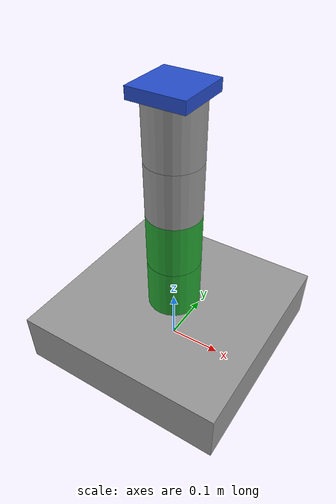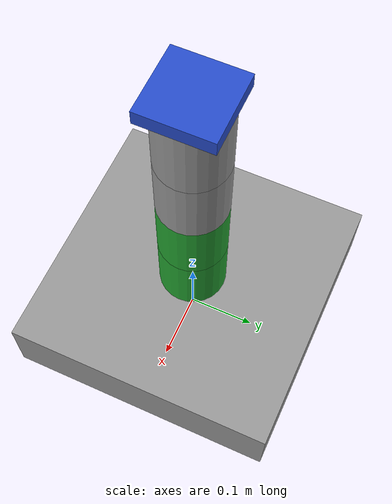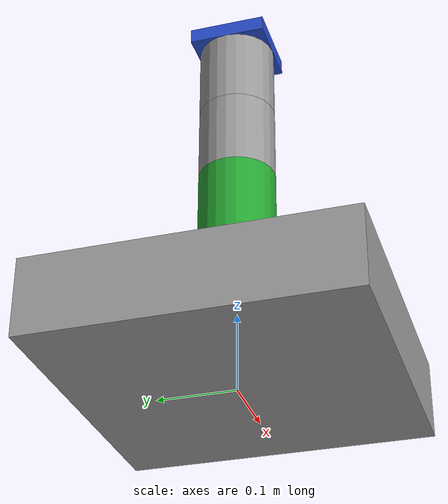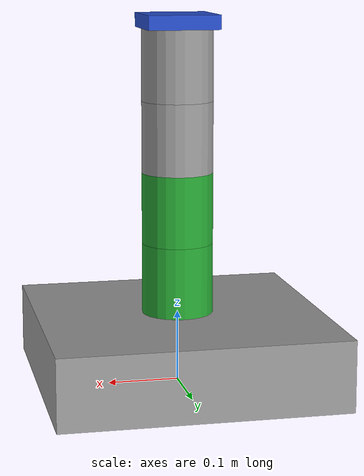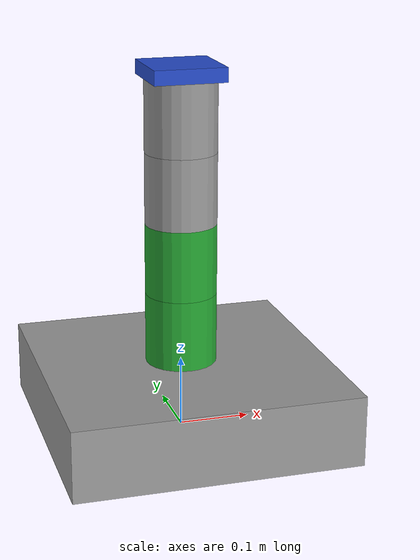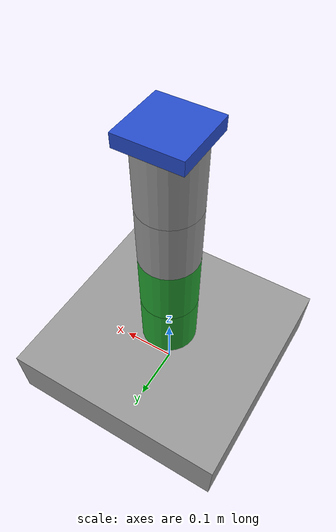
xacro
<?xml version="1.0"?>
<robot xmlns:xacro="http://www.ros.org/wiki/xacro">
    <link name="base_arm_link">
        <visual>
            <geometry>
                <box size="0.4 0.4 0.1"/>
            </geometry>
            <origin xyz="0.0 0.0 0.05" rpy="0.0 0.0 0.0"/>
            <material name="grey"/>
        </visual>
        <collision>
            <geometry>
                <box size="0.4 0.4 0.1"/>
            </geometry>
            <origin xyz="0.0 0.0 0.05" rpy="0.0 0.0 0.0"/>
        </collision>
    </link>
    <link name="amr_link">
        <visual>
            <geometry>
                <cylinder radius="0.05" length="0.1"/>
            </geometry>
            <origin xyz="0.0 0.0 0.05" rpy="0.0 0.0 0.0"/>
            <material name="dark_green"/>
        </visual>
        <collision>
            <geometry>
                <box size="0.1 0.1 0.1"/>
            </geometry>
            <origin xyz="0.0 0.0 0.05" rpy="0.0 0.0 0.0"/>
        </collision>
    </link>
    <link name="forearm_link">
        <visual>
            <geometry>
                <cylinder radius="0.05" length="0.1"/>
            </geometry>
            <origin xyz="0.0 0.0 0.05" rpy="0.0 0.0 0.0"/>
            <material name="light_green"/>
        </visual>
        <collision>
            <geometry>
                <box size="0.1 0.1 0.1"/>
            </geometry>
            <origin xyz="0.0 0.0 0.05" rpy="0.0 0.0 0.0"/>
        </collision>
    </link>
    <link name="forearm_link2">
        <visual>
            <geometry>
                <cylinder radius="0.05" length="0.1"/>
            </geometry>
            <origin xyz="0.0 0.0 0.05" rpy="0.0 0.0 0.0"/>
            <material name="grey"/>
        </visual>
        <collision>
            <geometry>
                <box size="0.1 0.1 0.1"/>
            </geometry>
            <origin xyz="0.0 0.0 0.05" rpy="0.0 0.0 0.0"/>
        </collision>
    </link>
     <link name="forearm_link3">
        <visual>
            <geometry>
                <cylinder radius="0.05" length="0.1"/>
            </geometry>
            <origin xyz="0.0 0.0 0.05" rpy="0.0 0.0 0.0"/>
            <material name="grey"/>
        </visual>
        <collision>
            <geometry>
                <box size="0.1 0.1 0.1"/>
            </geometry>
            <origin xyz="0.0 0.0 0.05" rpy="0.0 0.0 0.0"/>
        </collision>
    </link>
    <link name="hand_link">
        <visual>
            <geometry>
                <box size="0.1 0.1 0.02"/>
            </geometry>
            <origin xyz="0.0 0.0 0.01" rpy="0.0 0.0 0.0"/>
            <material name="blue"/>
        </visual>
        <collision>
            <geometry>
                <box size="0.1 0.1 0.02"/>
            </geometry>
            <origin xyz="0.0 0.0 0.01" rpy="0.0 0.0 0.0"/>
        </collision>
    </link>
    <link name="tool_link">

    </link>
    <joint name="joint1" type="revolute">
        <origin xyz="0.0 0.0 0.1" rpy="0.0 0.0 0.0"/>
        <parent link="base_arm_link"/>
        <child link="amr_link"/>
        <axis xyz="0.0 0.0 1.0"/>
        <limit lower="-1.57" upper="1.57" effort="1000.0" velocity="1.0"/>
    </joint>
    <joint name="joint2" type="revolute">
        <origin xyz="0.0 0.0 0.1" rpy="0.0 0.0 0.0"/>
        <parent link="amr_link"/>
        <child link="forearm_link"/>
        <axis xyz="0.0 1.0 0.0"/>
        <limit lower="-1.57" upper="1.57" effort="1000.0" velocity="1.0"/>
    </joint>
    <joint name="joint3" type="revolute">
        <origin xyz="0.0 0.0 0.1" rpy="0.0 0.0 0.0"/>
        <parent link="forearm_link"/>
        <child link="forearm_link2"/>
        <axis xyz="0.0 1.0 0.0"/>
        <limit lower="-1.57" upper="1.57" effort="1000.0" velocity="1.0"/>
    </joint>
    <joint name="joint4" type="revolute">
        <origin xyz="0.0 0.0 0.1" rpy="0.0 0.0 0.0"/>
        <parent link="forearm_link2"/>
        <child link="forearm_link3"/>
        <axis xyz="0.0 1.0 0.0"/>
        <limit lower="-1.57" upper="1.57" effort="1000.0" velocity="1.0"/>
    </joint>
     <joint name="joint5" type="revolute">
        <origin xyz="0.0 0.0 0.1" rpy="0.0 0.0 0.0"/>
        <parent link="forearm_link3"/>
        <child link="hand_link"/>
        <axis xyz="0.0 0.0 1.0"/>
        <limit lower="-1.57" upper="1.57" effort="1000.0" velocity="1.0"/>
    </joint>
    <joint name="hand_tool_joint" type="fixed">
        <origin xyz="0.0 0.0 0.02" rpy="0.0 0.0 0.0"/>
        <parent link="hand_link"/>
        <child link="tool_link"/>
    </joint>

</robot>
